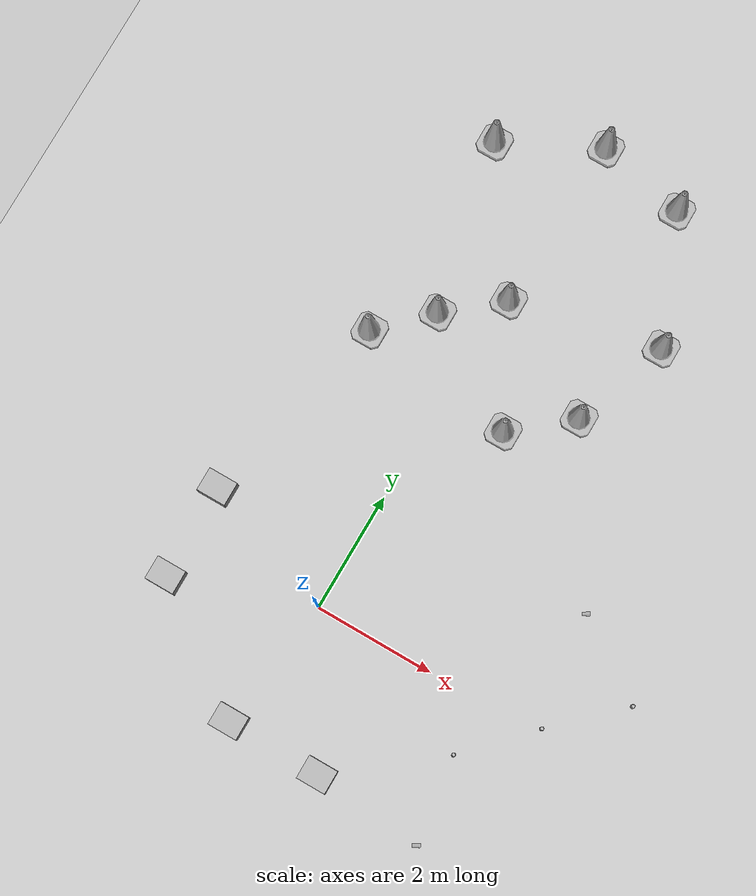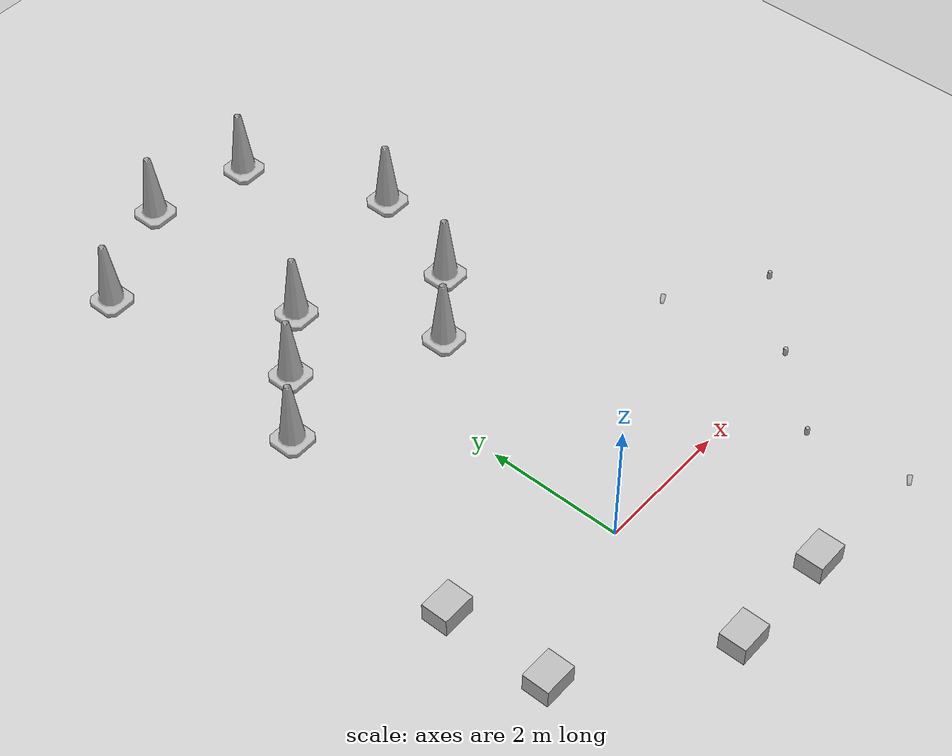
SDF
<sdf version="1.7">
 <world name="default">
  <light name="sun" type="directional">
   <pose>0 0 10 0 -0 0</pose>
   <diffuse>0.8 0.8 0.8 1</diffuse>
   <specular>0.2 0.2 0.2 1</specular>
   <attenuation>
    <range>1000</range>
    <constant>0.9</constant>
    <linear>0.01</linear>
    <quadratic>0.001</quadratic>
   </attenuation>
   <direction>-0.5 0.1 -0.9</direction>
   <spot><inner_angle>0</inner_angle><outer_angle>0</outer_angle><falloff>0</falloff></spot>
  </light>
  <model name="ground_plane">
   <static>1</static>
   <link name="link">
    <collision name="collision">
     <geometry><plane><normal>0 0 1</normal><size>100 100</size></plane></geometry>
     <surface>
      <contact><collide_bitmask>65535</collide_bitmask></contact>
      <friction><ode><mu>100</mu><mu2>50</mu2></ode></friction>
     </surface>
    </collision>
    <visual name="visual">
     <cast_shadows>0</cast_shadows>
     <geometry><plane><normal>0 0 1</normal><size>100 100</size></plane></geometry>
     <material>
      <script><uri>file://media/materials/scripts/gazebo.material</uri><name>Gazebo/Grey</name></script>
     </material>
    </visual>
   </link>
  </model>
  <gravity>0 0 -9.8</gravity>
  <magnetic_field>6e-06 2.3e-05 -4.2e-05</magnetic_field>
  <atmosphere type="adiabatic"/>
  <physics type="ode">
   <max_step_size>0.001</max_step_size>
   <real_time_factor>1</real_time_factor>
   <real_time_update_rate>1000</real_time_update_rate>
  </physics>
  <scene><ambient>0.4 0.4 0.4 1</ambient><background>0.7 0.7 0.7 1</background><shadows>1</shadows></scene>
  <audio><device>default</device></audio>
  <spherical_coordinates>
   <surface_model>EARTH_WGS84</surface_model>
   <latitude_deg>0</latitude_deg>
   <longitude_deg>0</longitude_deg>
   <elevation>0</elevation>
   <heading_deg>0</heading_deg>
  </spherical_coordinates>
  <model name="cardboard_box">
   <pose>-2.30936 0.819725 0.149 0 -0 0</pose>
   <link name="link">
    <inertial>
     <mass>2</mass>
     <inertia>
      <ixx>0.0416667</ixx>
      <ixy>0</ixy>
      <ixz>0</ixz>
      <iyy>0.0566667</iyy>
      <iyz>0</iyz>
      <izz>0.0683333</izz>
     </inertia>
    </inertial>
    <collision name="collision">
     <geometry><box><size>0.5 0.4 0.3</size></box></geometry>
     <surface>
      <friction><ode><mu>1</mu><mu2>1</mu2></ode></friction>
      <contact><ode><kp>1e+07</kp><kd>1</kd><min_depth>0.001</min_depth><max_vel>0.1</max_vel></ode></contact>
     </surface>
    </collision>
    <visual name="visual">
     <pose>0 0 -0.15 0 -0 0</pose>
     <geometry>
      <mesh><uri>model://cardboard_box/meshes/cardboard_box.dae</uri><scale>1.25932 1.00745 0.755591</scale></mesh>
     </geometry>
    </visual>
   </link>
  </model>
  <model name="cardboard_box_0">
   <pose>-2.29406 -0.764178 0.149 0 -0 0</pose>
   <link name="link">
    <inertial>
     <mass>2</mass>
     <inertia>
      <ixx>0.0416667</ixx>
      <ixy>0</ixy>
      <ixz>0</ixz>
      <iyy>0.0566667</iyy>
      <iyz>0</iyz>
      <izz>0.0683333</izz>
     </inertia>
    </inertial>
    <collision name="collision">
     <geometry><box><size>0.5 0.4 0.3</size></box></geometry>
     <surface>
      <friction><ode><mu>1</mu><mu2>1</mu2></ode></friction>
      <contact><ode><kp>1e+07</kp><kd>1</kd><min_depth>0.001</min_depth><max_vel>0.1</max_vel></ode></contact>
     </surface>
    </collision>
    <visual name="visual">
     <pose>0 0 -0.15 0 -0 0</pose>
     <geometry>
      <mesh><uri>model://cardboard_box/meshes/cardboard_box.dae</uri><scale>1.25932 1.00745 0.755591</scale></mesh>
     </geometry>
    </visual>
   </link>
  </model>
  <model name="cardboard_box_1">
   <pose>-0.300195 -2.19856 0.149 0 -0 0</pose>
   <link name="link">
    <inertial>
     <mass>2</mass>
     <inertia>
      <ixx>0.0416667</ixx>
      <ixy>0</ixy>
      <ixz>0</ixz>
      <iyy>0.0566667</iyy>
      <iyz>0</iyz>
      <izz>0.0683333</izz>
     </inertia>
    </inertial>
    <collision name="collision">
     <geometry><box><size>0.5 0.4 0.3</size></box></geometry>
     <surface>
      <friction><ode><mu>1</mu><mu2>1</mu2></ode></friction>
      <contact><ode><kp>1e+07</kp><kd>1</kd><min_depth>0.001</min_depth><max_vel>0.1</max_vel></ode></contact>
     </surface>
    </collision>
    <visual name="visual">
     <pose>0 0 -0.15 0 -0 0</pose>
     <geometry>
      <mesh><uri>model://cardboard_box/meshes/cardboard_box.dae</uri><scale>1.25932 1.00745 0.755591</scale></mesh>
     </geometry>
    </visual>
   </link>
  </model>
  <model name="cardboard_box_2">
   <pose>1.28746 -2.22286 0.149 0 -0 0</pose>
   <link name="link">
    <inertial>
     <mass>2</mass>
     <inertia>
      <ixx>0.0416667</ixx>
      <ixy>0</ixy>
      <ixz>0</ixz>
      <iyy>0.0566667</iyy>
      <iyz>0</iyz>
      <izz>0.0683333</izz>
     </inertia>
    </inertial>
    <collision name="collision">
     <geometry><box><size>0.5 0.4 0.3</size></box></geometry>
     <surface>
      <friction><ode><mu>1</mu><mu2>1</mu2></ode></friction>
      <contact><ode><kp>1e+07</kp><kd>1</kd><min_depth>0.001</min_depth><max_vel>0.1</max_vel></ode></contact>
     </surface>
    </collision>
    <visual name="visual">
     <pose>0 0 -0.15 0 -0 0</pose>
     <geometry>
      <mesh><uri>model://cardboard_box/meshes/cardboard_box.dae</uri><scale>1.25932 1.00745 0.755591</scale></mesh>
     </geometry>
    </visual>
   </link>
  </model>
  <model name="coke_can">
   <link name="link">
    <inertial>
     <pose>0 0 0.06 0 -0 0</pose>
     <mass>0.39</mass>
     <inertia>
      <ixx>0.00055575</ixx>
      <ixy>0</ixy>
      <ixz>0</ixz>
      <iyy>0.00055575</iyy>
      <iyz>0</iyz>
      <izz>0.0001755</izz>
     </inertia>
    </inertial>
    <collision name="collision">
     <pose>0.003937 0.004724 -0.18 0 -0 0</pose>
     <geometry><mesh><uri>model://coke_can/meshes/coke_can.dae</uri></mesh></geometry>
     <surface>
      <friction><ode><mu>1</mu><mu2>1</mu2></ode></friction>
      <contact><ode><kp>1e+07</kp><kd>1</kd><min_depth>0.001</min_depth><max_vel>0.1</max_vel></ode></contact>
     </surface>
    </collision>
    <visual name="visual">
     <pose>0.003937 0.004724 -0.18 0 -0 0</pose>
     <geometry><mesh><uri>model://coke_can/meshes/coke_can.dae</uri></mesh></geometry>
    </visual>
   </link>
   <pose>2.94183 -0.919103 -0.003425 -0.039038 0.00695 -0.00075</pose>
  </model>
  <model name="coke_can_0">
   <link name="link">
    <inertial>
     <pose>0 0 0.06 0 -0 0</pose>
     <mass>0.39</mass>
     <inertia>
      <ixx>0.00055575</ixx>
      <ixy>0</ixy>
      <ixz>0</ixz>
      <iyy>0.00055575</iyy>
      <iyz>0</iyz>
      <izz>0.0001755</izz>
     </inertia>
    </inertial>
    <collision name="collision">
     <pose>0.003937 0.004724 -0.18 0 -0 0</pose>
     <geometry><mesh><uri>model://coke_can/meshes/coke_can.dae</uri></mesh></geometry>
     <surface>
      <friction><ode><mu>1</mu><mu2>1</mu2></ode></friction>
      <contact><ode><kp>1e+07</kp><kd>1</kd><min_depth>0.001</min_depth><max_vel>0.1</max_vel></ode></contact>
     </surface>
    </collision>
    <visual name="visual">
     <pose>0.003937 0.004724 -0.18 0 -0 0</pose>
     <geometry><mesh><uri>model://coke_can/meshes/coke_can.dae</uri></mesh></geometry>
    </visual>
   </link>
   <pose>3.91792 0.107985 -0.003382 -0.041336 0.004971 -0.000766</pose>
  </model>
  <model name="coke_can_1">
   <link name="link">
    <inertial>
     <pose>0 0 0.06 0 -0 0</pose>
     <mass>0.39</mass>
     <inertia>
      <ixx>0.00055575</ixx>
      <ixy>0</ixy>
      <ixz>0</ixz>
      <iyy>0.00055575</iyy>
      <iyz>0</iyz>
      <izz>0.0001755</izz>
     </inertia>
    </inertial>
    <collision name="collision">
     <pose>0.003937 0.004724 -0.18 0 -0 0</pose>
     <geometry><mesh><uri>model://coke_can/meshes/coke_can.dae</uri></mesh></geometry>
     <surface>
      <friction><ode><mu>1</mu><mu2>1</mu2></ode></friction>
      <contact><ode><kp>1e+07</kp><kd>1</kd><min_depth>0.001</min_depth><max_vel>0.1</max_vel></ode></contact>
     </surface>
    </collision>
    <visual name="visual">
     <pose>0.003937 0.004724 -0.18 0 -0 0</pose>
     <geometry><mesh><uri>model://coke_can/meshes/coke_can.dae</uri></mesh></geometry>
    </visual>
   </link>
   <pose>4.96383 1.10935 -0.00335 -0.043157 0.00328 -0.000775</pose>
  </model>
  <model name="plastic_cup">
   <link name="link">
    <pose>0 0 0.065 0 -0 0</pose>
    <inertial>
     <mass>0.0599</mass>
     <inertia>
      <ixx>0.000302896</ixx>
      <ixy>0</ixy>
      <ixz>0</ixz>
      <iyy>0.000302896</iyy>
      <iyz>0</iyz>
      <izz>3.28764e-05</izz>
     </inertia>
    </inertial>
    <collision name="collision">
     <geometry><mesh><uri>model://plastic_cup/meshes/plastic_cup.dae</uri></mesh></geometry>
     <surface>
      <contact>
       <poissons_ratio>0.35</poissons_ratio>
       <elastic_modulus>3.10264e+09</elastic_modulus>
       <ode><kp>100000</kp><kd>100</kd><max_vel>100</max_vel><min_depth>0.001</min_depth></ode>
      </contact>
      <friction>
       <torsional>
        <coefficient>1</coefficient>
        <use_patch_radius>0</use_patch_radius>
        <surface_radius>0.01</surface_radius>
       </torsional>
      </friction>
     </surface>
    </collision>
    <visual name="visual">
     <geometry><mesh><uri>model://plastic_cup/meshes/plastic_cup.dae</uri></mesh></geometry>
     <material>
      <script><uri>file://media/materials/scripts/gazebo.material</uri><name>Gazebo/GreyTransparent</name></script>
     </material>
    </visual>
   </link>
   <pose>3.58679 1.97256 0.018778 1.49594 -0.195802 2.08367</pose>
  </model>
  <model name="plastic_cup_0">
   <link name="link">
    <pose>0 0 0.065 0 -0 0</pose>
    <inertial>
     <mass>0.0599</mass>
     <inertia>
      <ixx>0.000302896</ixx>
      <ixy>0</ixy>
      <ixz>0</ixz>
      <iyy>0.000302896</iyy>
      <iyz>0</iyz>
      <izz>3.28764e-05</izz>
     </inertia>
    </inertial>
    <collision name="collision">
     <geometry><mesh><uri>model://plastic_cup/meshes/plastic_cup.dae</uri></mesh></geometry>
     <surface>
      <contact>
       <poissons_ratio>0.35</poissons_ratio>
       <elastic_modulus>3.10264e+09</elastic_modulus>
       <ode><kp>100000</kp><kd>100</kd><max_vel>100</max_vel><min_depth>0.001</min_depth></ode>
      </contact>
      <friction>
       <torsional>
        <coefficient>1</coefficient>
        <use_patch_radius>0</use_patch_radius>
        <surface_radius>0.01</surface_radius>
       </torsional>
      </friction>
     </surface>
    </collision>
    <visual name="visual">
     <geometry><mesh><uri>model://plastic_cup/meshes/plastic_cup.dae</uri></mesh></geometry>
     <material>
      <script><uri>file://media/materials/scripts/gazebo.material</uri><name>Gazebo/GreyTransparent</name></script>
     </material>
    </visual>
   </link>
   <pose>3.08201 -2.41747 0.018778 1.49594 -0.195802 2.08366</pose>
  </model>
  <model name="Construction Cone">
   <link name="link">
    <collision name="collision">
     <geometry>
      <mesh><scale>10 10 10</scale><uri>model://construction_cone/meshes/construction_cone.dae</uri></mesh>
     </geometry>
    </collision>
    <visual name="visual">
     <geometry>
      <mesh><scale>10 10 10</scale><uri>model://construction_cone/meshes/construction_cone.dae</uri></mesh>
     </geometry>
    </visual>
    <inertial>
     <inertia><ixx>1</ixx><ixy>0</ixy><ixz>0</ixz><iyy>1</iyy><iyz>0</iyz><izz>1</izz></inertia>
     <mass>1</mass>
    </inertial>
   </link>
   <pose>-1.53842 4.19245 0 -0 -0 -0</pose>
  </model>
  <model name="Construction Cone_0">
   <link name="link">
    <collision name="collision">
     <geometry>
      <mesh><scale>10 10 10</scale><uri>model://construction_cone/meshes/construction_cone.dae</uri></mesh>
     </geometry>
    </collision>
    <visual name="visual">
     <geometry>
      <mesh><scale>10 10 10</scale><uri>model://construction_cone/meshes/construction_cone.dae</uri></mesh>
     </geometry>
    </visual>
    <inertial>
     <inertia><ixx>1</ixx><ixy>0</ixy><ixz>0</ixz><iyy>1</iyy><iyz>0</iyz><izz>1</izz></inertia>
     <mass>1</mass>
    </inertial>
   </link>
   <pose>0.127339 5.71239 -0 0 -1e-06 0</pose>
  </model>
  <model name="Construction Cone_1">
   <link name="link">
    <collision name="collision">
     <geometry>
      <mesh><scale>10 10 10</scale><uri>model://construction_cone/meshes/construction_cone.dae</uri></mesh>
     </geometry>
    </collision>
    <visual name="visual">
     <geometry>
      <mesh><scale>10 10 10</scale><uri>model://construction_cone/meshes/construction_cone.dae</uri></mesh>
     </geometry>
    </visual>
    <inertial>
     <inertia><ixx>1</ixx><ixy>0</ixy><ixz>0</ixz><iyy>1</iyy><iyz>0</iyz><izz>1</izz></inertia>
     <mass>1</mass>
    </inertial>
   </link>
   <pose>-0.749863 4.98112 -0 1e-06 -0 0</pose>
  </model>
  <model name="Construction Cone_2">
   <link name="link">
    <collision name="collision">
     <geometry>
      <mesh><scale>10 10 10</scale><uri>model://construction_cone/meshes/construction_cone.dae</uri></mesh>
     </geometry>
    </collision>
    <visual name="visual">
     <geometry>
      <mesh><scale>10 10 10</scale><uri>model://construction_cone/meshes/construction_cone.dae</uri></mesh>
     </geometry>
    </visual>
    <inertial>
     <inertia><ixx>1</ixx><ixy>0</ixy><ixz>0</ixz><iyy>1</iyy><iyz>0</iyz><izz>1</izz></inertia>
     <mass>1</mass>
    </inertial>
   </link>
   <pose>1.09641 3.84057 -0 0 -0 0</pose>
  </model>
  <model name="Construction Cone_3">
   <link name="link">
    <collision name="collision">
     <geometry>
      <mesh><scale>10 10 10</scale><uri>model://construction_cone/meshes/construction_cone.dae</uri></mesh>
     </geometry>
    </collision>
    <visual name="visual">
     <geometry>
      <mesh><scale>10 10 10</scale><uri>model://construction_cone/meshes/construction_cone.dae</uri></mesh>
     </geometry>
    </visual>
    <inertial>
     <inertia><ixx>1</ixx><ixy>0</ixy><ixz>0</ixz><iyy>1</iyy><iyz>0</iyz><izz>1</izz></inertia>
     <mass>1</mass>
    </inertial>
   </link>
   <pose>2.02579 4.62339 -0 0 0 -0.001676</pose>
  </model>
  <model name="Construction Cone_4">
   <link name="link">
    <collision name="collision">
     <geometry>
      <mesh><scale>10 10 10</scale><uri>model://construction_cone/meshes/construction_cone.dae</uri></mesh>
     </geometry>
    </collision>
    <visual name="visual">
     <geometry>
      <mesh><scale>10 10 10</scale><uri>model://construction_cone/meshes/construction_cone.dae</uri></mesh>
     </geometry>
    </visual>
    <inertial>
     <inertia><ixx>1</ixx><ixy>0</ixy><ixz>0</ixz><iyy>1</iyy><iyz>0</iyz><izz>1</izz></inertia>
     <mass>1</mass>
    </inertial>
   </link>
   <pose>2.60126 6.24391 0 -0 -0 -0.000216</pose>
  </model>
  <model name="Construction Cone_5">
   <link name="link">
    <collision name="collision">
     <geometry>
      <mesh><scale>10 10 10</scale><uri>model://construction_cone/meshes/construction_cone.dae</uri></mesh>
     </geometry>
    </collision>
    <visual name="visual">
     <geometry>
      <mesh><scale>10 10 10</scale><uri>model://construction_cone/meshes/construction_cone.dae</uri></mesh>
     </geometry>
    </visual>
    <inertial>
     <inertia><ixx>1</ixx><ixy>0</ixy><ixz>0</ixz><iyy>1</iyy><iyz>0</iyz><izz>1</izz></inertia>
     <mass>1</mass>
    </inertial>
   </link>
   <pose>1.72818 8.32089 -0 0 -1e-06 0</pose>
  </model>
  <model name="Construction Cone_6">
   <link name="link">
    <collision name="collision">
     <geometry>
      <mesh><scale>10 10 10</scale><uri>model://construction_cone/meshes/construction_cone.dae</uri></mesh>
     </geometry>
    </collision>
    <visual name="visual">
     <geometry>
      <mesh><scale>10 10 10</scale><uri>model://construction_cone/meshes/construction_cone.dae</uri></mesh>
     </geometry>
    </visual>
    <inertial>
     <inertia><ixx>1</ixx><ixy>0</ixy><ixz>0</ixz><iyy>1</iyy><iyz>0</iyz><izz>1</izz></inertia>
     <mass>1</mass>
    </inertial>
   </link>
   <pose>0.243157 8.65122 -0 0 -1e-06 0</pose>
  </model>
  <model name="Construction Cone_7">
   <link name="link">
    <collision name="collision">
     <geometry>
      <mesh><scale>10 10 10</scale><uri>model://construction_cone/meshes/construction_cone.dae</uri></mesh>
     </geometry>
    </collision>
    <visual name="visual">
     <geometry>
      <mesh><scale>10 10 10</scale><uri>model://construction_cone/meshes/construction_cone.dae</uri></mesh>
     </geometry>
    </visual>
    <inertial>
     <inertia><ixx>1</ixx><ixy>0</ixy><ixz>0</ixz><iyy>1</iyy><iyz>0</iyz><izz>1</izz></inertia>
     <mass>1</mass>
    </inertial>
   </link>
   <pose>-1.35544 7.85404 -0 1e-06 -0 0</pose>
  </model>
  <light name="user_directional_light_0" type="directional">
   <pose>1.14943 -0.954619 1 0 -0 0</pose>
   <diffuse>0.5 0.5 0.5 1</diffuse>
   <specular>0.1 0.1 0.1 1</specular>
   <direction>0.1 0.1 -0.9</direction>
   <attenuation>
    <range>20</range>
    <constant>0.5</constant>
    <linear>0.01</linear>
    <quadratic>0.001</quadratic>
   </attenuation>
  </light>
 </world>
</sdf>
